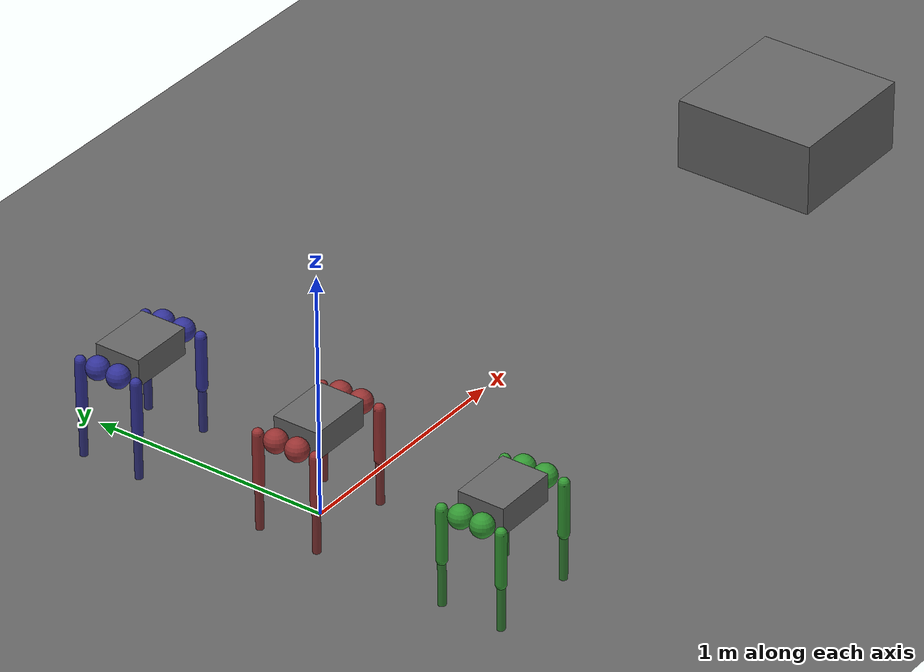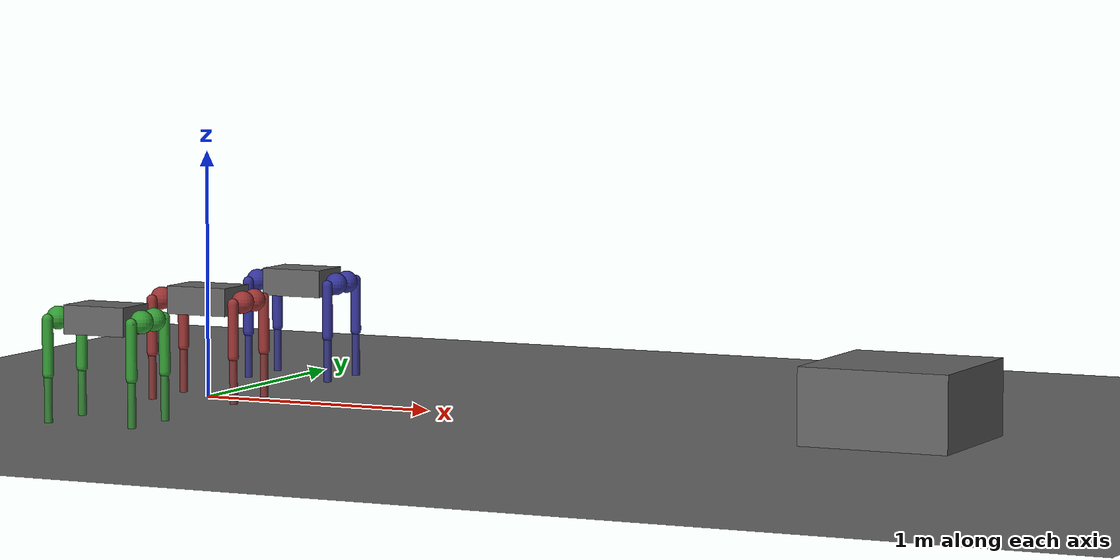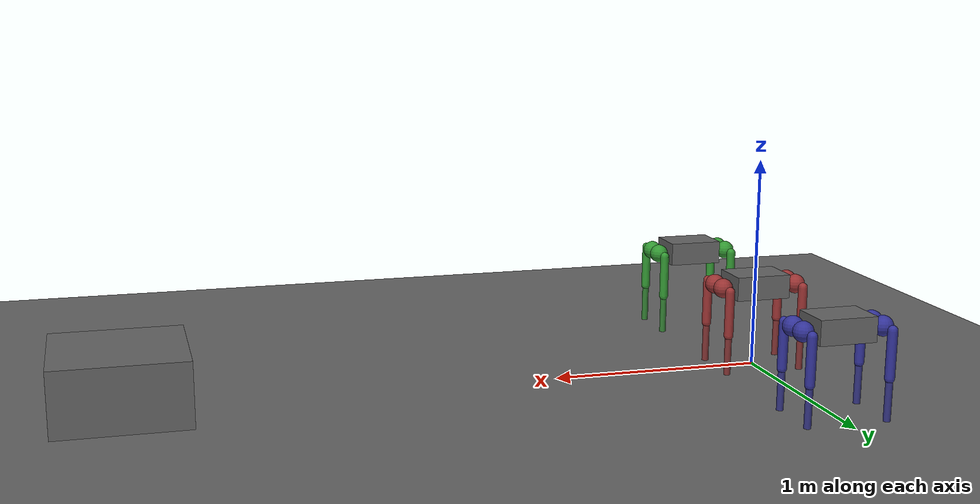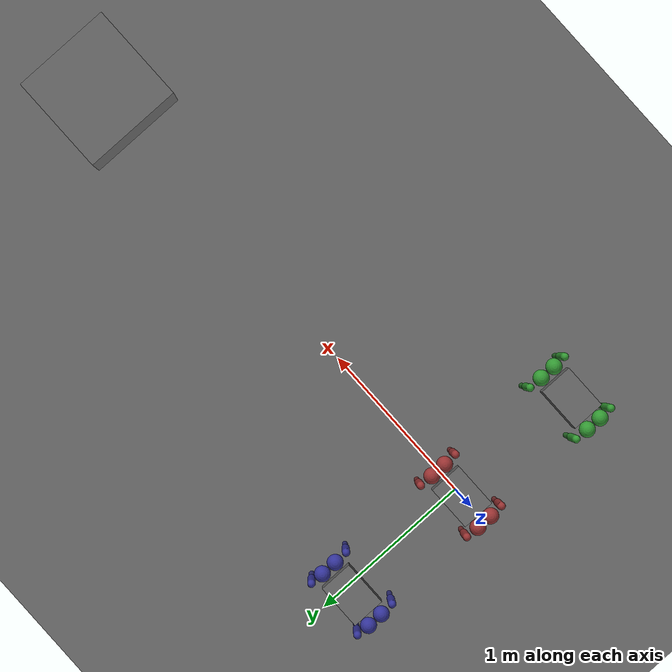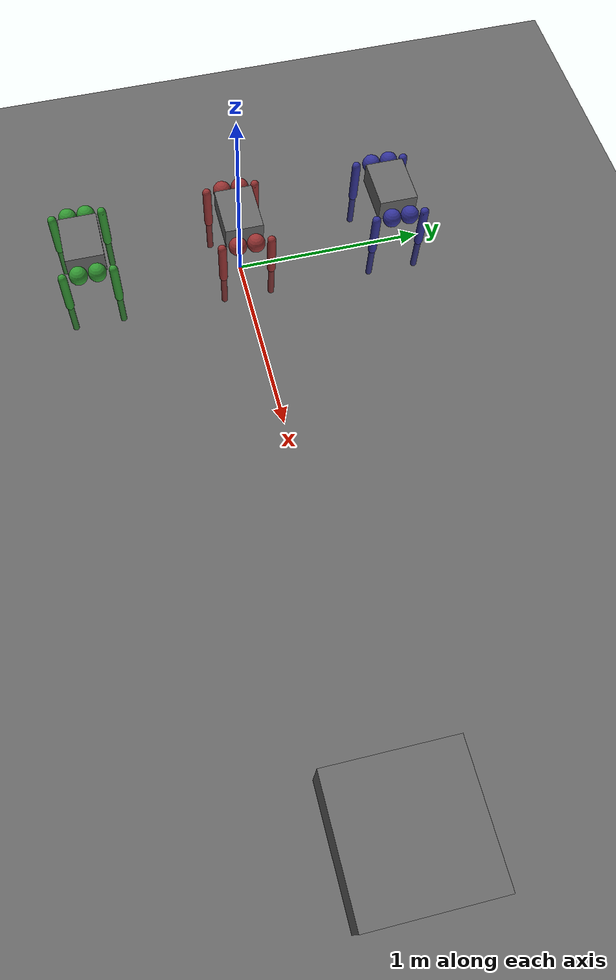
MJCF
<mujoco model="multi_go1_3">
  <compiler angle="radian" autolimits="true"/>
  <option integrator="RK4" timestep="0.002"/>

  <default>
    <joint armature="0.01" damping="2" limited="true"/>
    <geom contype="0" conaffinity="0" condim="1"
          friction="0.6 0.3 0.3" rgba="0.4 0.4 0.4 1"/>
    <motor ctrllimited="true" ctrlrange="-1 1"/>
  </default>

  <asset>
    <texture name="texplane" type="2d" builtin="checker"
             rgb1="0.2 0.3 0.4" rgb2="0.1 0.2 0.3" width="512" height="512"/>
    <material name="MatPlane" reflectance="0.5" texture="texplane"
              texrepeat="1 1" texuniform="true"/>
    <material name="r0_mat" rgba="0.7 0.2 0.2 1"/>
    <material name="r1_mat" rgba="0.2 0.2 0.7 1"/>
    <material name="r2_mat" rgba="0.2 0.7 0.2 1"/>
    <material name="box_mat" rgba="0.9 0.9 0.2 1"/>
  </asset>

  <worldbody>
    <light cutoff="100" diffuse="1 1 1" dir="0 0 -1.3" directional="true"
           exponent="1" pos="0 0 4" specular="0.1 0.1 0.1"/>
    <geom name="floor" type="plane" size="50 50 0.1" contype="1" conaffinity="1"
          condim="3" material="MatPlane" friction="1.0 0.5 0.5"/>

    <!-- ===================== ROBOT 0 (red, y=0) ===================== -->
    <body name="trunk_r0" pos="0 0 0.4">
      <joint name="root_r0" type="free"/>
      <geom name="trunk_geom_r0" type="box" size="0.1335 0.097 0.057"
            contype="1" conaffinity="1" condim="3" material="r0_mat"
            mass="5.204"/>

      <!-- FR: Front Right -->
      <body name="FR_hip_r0" pos="0.1881 -0.04675 0">
        <joint name="FR_hip_joint_r0" axis="1 0 0" range="-0.863 0.863"/>
        <geom name="FR_hip_geom_r0" type="sphere" size="0.046"
              rgba="0.6 0.2 0.2 1"/>
        <body name="FR_thigh_r0" pos="0 -0.08 0">
          <joint name="FR_thigh_joint_r0" axis="0 1 0" range="-0.686 4.501"/>
          <geom name="FR_thigh_geom_r0" type="capsule"
                fromto="0 0 0 0 0 -0.213" size="0.022"
                rgba="0.6 0.2 0.2 1"/>
          <body name="FR_calf_r0" pos="0 0 -0.213">
            <joint name="FR_calf_joint_r0" axis="0 1 0" range="-2.818 -0.888"/>
            <geom name="FR_calf_geom_r0" type="capsule"
                  fromto="0 0 0 0 0 -0.213" size="0.016"
                  contype="1" conaffinity="1" condim="3"
                  rgba="0.5 0.2 0.2 1"/>
            <site name="FR_foot_r0" pos="0 0 -0.213" size="0.022" type="sphere"/>
          </body>
        </body>
      </body>

      <!-- FL: Front Left -->
      <body name="FL_hip_r0" pos="0.1881 0.04675 0">
        <joint name="FL_hip_joint_r0" axis="1 0 0" range="-0.863 0.863"/>
        <geom name="FL_hip_geom_r0" type="sphere" size="0.046"
              rgba="0.6 0.2 0.2 1"/>
        <body name="FL_thigh_r0" pos="0 0.08 0">
          <joint name="FL_thigh_joint_r0" axis="0 1 0" range="-0.686 4.501"/>
          <geom name="FL_thigh_geom_r0" type="capsule"
                fromto="0 0 0 0 0 -0.213" size="0.022"
                rgba="0.6 0.2 0.2 1"/>
          <body name="FL_calf_r0" pos="0 0 -0.213">
            <joint name="FL_calf_joint_r0" axis="0 1 0" range="-2.818 -0.888"/>
            <geom name="FL_calf_geom_r0" type="capsule"
                  fromto="0 0 0 0 0 -0.213" size="0.016"
                  contype="1" conaffinity="1" condim="3"
                  rgba="0.5 0.2 0.2 1"/>
            <site name="FL_foot_r0" pos="0 0 -0.213" size="0.022" type="sphere"/>
          </body>
        </body>
      </body>

      <!-- RR: Rear Right -->
      <body name="RR_hip_r0" pos="-0.1881 -0.04675 0">
        <joint name="RR_hip_joint_r0" axis="1 0 0" range="-0.863 0.863"/>
        <geom name="RR_hip_geom_r0" type="sphere" size="0.046"
              rgba="0.6 0.2 0.2 1"/>
        <body name="RR_thigh_r0" pos="0 -0.08 0">
          <joint name="RR_thigh_joint_r0" axis="0 1 0" range="-0.686 4.501"/>
          <geom name="RR_thigh_geom_r0" type="capsule"
                fromto="0 0 0 0 0 -0.213" size="0.022"
                rgba="0.6 0.2 0.2 1"/>
          <body name="RR_calf_r0" pos="0 0 -0.213">
            <joint name="RR_calf_joint_r0" axis="0 1 0" range="-2.818 -0.888"/>
            <geom name="RR_calf_geom_r0" type="capsule"
                  fromto="0 0 0 0 0 -0.213" size="0.016"
                  contype="1" conaffinity="1" condim="3"
                  rgba="0.5 0.2 0.2 1"/>
            <site name="RR_foot_r0" pos="0 0 -0.213" size="0.022" type="sphere"/>
          </body>
        </body>
      </body>

      <!-- RL: Rear Left -->
      <body name="RL_hip_r0" pos="-0.1881 0.04675 0">
        <joint name="RL_hip_joint_r0" axis="1 0 0" range="-0.863 0.863"/>
        <geom name="RL_hip_geom_r0" type="sphere" size="0.046"
              rgba="0.6 0.2 0.2 1"/>
        <body name="RL_thigh_r0" pos="0 0.08 0">
          <joint name="RL_thigh_joint_r0" axis="0 1 0" range="-0.686 4.501"/>
          <geom name="RL_thigh_geom_r0" type="capsule"
                fromto="0 0 0 0 0 -0.213" size="0.022"
                rgba="0.6 0.2 0.2 1"/>
          <body name="RL_calf_r0" pos="0 0 -0.213">
            <joint name="RL_calf_joint_r0" axis="0 1 0" range="-2.818 -0.888"/>
            <geom name="RL_calf_geom_r0" type="capsule"
                  fromto="0 0 0 0 0 -0.213" size="0.016"
                  contype="1" conaffinity="1" condim="3"
                  rgba="0.5 0.2 0.2 1"/>
            <site name="RL_foot_r0" pos="0 0 -0.213" size="0.022" type="sphere"/>
          </body>
        </body>
      </body>
    </body>

    <!-- ===================== ROBOT 1 (blue, y=0.8) ===================== -->
    <body name="trunk_r1" pos="0 0.8 0.4">
      <joint name="root_r1" type="free"/>
      <geom name="trunk_geom_r1" type="box" size="0.1335 0.097 0.057"
            contype="1" conaffinity="1" condim="3" material="r1_mat"
            mass="5.204"/>

      <!-- FR: Front Right -->
      <body name="FR_hip_r1" pos="0.1881 -0.04675 0">
        <joint name="FR_hip_joint_r1" axis="1 0 0" range="-0.863 0.863"/>
        <geom name="FR_hip_geom_r1" type="sphere" size="0.046"
              rgba="0.2 0.2 0.6 1"/>
        <body name="FR_thigh_r1" pos="0 -0.08 0">
          <joint name="FR_thigh_joint_r1" axis="0 1 0" range="-0.686 4.501"/>
          <geom name="FR_thigh_geom_r1" type="capsule"
                fromto="0 0 0 0 0 -0.213" size="0.022"
                rgba="0.2 0.2 0.6 1"/>
          <body name="FR_calf_r1" pos="0 0 -0.213">
            <joint name="FR_calf_joint_r1" axis="0 1 0" range="-2.818 -0.888"/>
            <geom name="FR_calf_geom_r1" type="capsule"
                  fromto="0 0 0 0 0 -0.213" size="0.016"
                  contype="1" conaffinity="1" condim="3"
                  rgba="0.2 0.2 0.5 1"/>
            <site name="FR_foot_r1" pos="0 0 -0.213" size="0.022" type="sphere"/>
          </body>
        </body>
      </body>

      <!-- FL: Front Left -->
      <body name="FL_hip_r1" pos="0.1881 0.04675 0">
        <joint name="FL_hip_joint_r1" axis="1 0 0" range="-0.863 0.863"/>
        <geom name="FL_hip_geom_r1" type="sphere" size="0.046"
              rgba="0.2 0.2 0.6 1"/>
        <body name="FL_thigh_r1" pos="0 0.08 0">
          <joint name="FL_thigh_joint_r1" axis="0 1 0" range="-0.686 4.501"/>
          <geom name="FL_thigh_geom_r1" type="capsule"
                fromto="0 0 0 0 0 -0.213" size="0.022"
                rgba="0.2 0.2 0.6 1"/>
          <body name="FL_calf_r1" pos="0 0 -0.213">
            <joint name="FL_calf_joint_r1" axis="0 1 0" range="-2.818 -0.888"/>
            <geom name="FL_calf_geom_r1" type="capsule"
                  fromto="0 0 0 0 0 -0.213" size="0.016"
                  contype="1" conaffinity="1" condim="3"
                  rgba="0.2 0.2 0.5 1"/>
            <site name="FL_foot_r1" pos="0 0 -0.213" size="0.022" type="sphere"/>
          </body>
        </body>
      </body>

      <!-- RR: Rear Right -->
      <body name="RR_hip_r1" pos="-0.1881 -0.04675 0">
        <joint name="RR_hip_joint_r1" axis="1 0 0" range="-0.863 0.863"/>
        <geom name="RR_hip_geom_r1" type="sphere" size="0.046"
              rgba="0.2 0.2 0.6 1"/>
        <body name="RR_thigh_r1" pos="0 -0.08 0">
          <joint name="RR_thigh_joint_r1" axis="0 1 0" range="-0.686 4.501"/>
          <geom name="RR_thigh_geom_r1" type="capsule"
                fromto="0 0 0 0 0 -0.213" size="0.022"
                rgba="0.2 0.2 0.6 1"/>
          <body name="RR_calf_r1" pos="0 0 -0.213">
            <joint name="RR_calf_joint_r1" axis="0 1 0" range="-2.818 -0.888"/>
            <geom name="RR_calf_geom_r1" type="capsule"
                  fromto="0 0 0 0 0 -0.213" size="0.016"
                  contype="1" conaffinity="1" condim="3"
                  rgba="0.2 0.2 0.5 1"/>
            <site name="RR_foot_r1" pos="0 0 -0.213" size="0.022" type="sphere"/>
          </body>
        </body>
      </body>

      <!-- RL: Rear Left -->
      <body name="RL_hip_r1" pos="-0.1881 0.04675 0">
        <joint name="RL_hip_joint_r1" axis="1 0 0" range="-0.863 0.863"/>
        <geom name="RL_hip_geom_r1" type="sphere" size="0.046"
              rgba="0.2 0.2 0.6 1"/>
        <body name="RL_thigh_r1" pos="0 0.08 0">
          <joint name="RL_thigh_joint_r1" axis="0 1 0" range="-0.686 4.501"/>
          <geom name="RL_thigh_geom_r1" type="capsule"
                fromto="0 0 0 0 0 -0.213" size="0.022"
                rgba="0.2 0.2 0.6 1"/>
          <body name="RL_calf_r1" pos="0 0 -0.213">
            <joint name="RL_calf_joint_r1" axis="0 1 0" range="-2.818 -0.888"/>
            <geom name="RL_calf_geom_r1" type="capsule"
                  fromto="0 0 0 0 0 -0.213" size="0.016"
                  contype="1" conaffinity="1" condim="3"
                  rgba="0.2 0.2 0.5 1"/>
            <site name="RL_foot_r1" pos="0 0 -0.213" size="0.022" type="sphere"/>
          </body>
        </body>
      </body>
    </body>

    <!-- ===================== ROBOT 2 (green, y=-0.8) ===================== -->
    <body name="trunk_r2" pos="0 -0.8 0.4">
      <joint name="root_r2" type="free"/>
      <geom name="trunk_geom_r2" type="box" size="0.1335 0.097 0.057"
            contype="1" conaffinity="1" condim="3" material="r2_mat"
            mass="5.204"/>

      <!-- FR: Front Right -->
      <body name="FR_hip_r2" pos="0.1881 -0.04675 0">
        <joint name="FR_hip_joint_r2" axis="1 0 0" range="-0.863 0.863"/>
        <geom name="FR_hip_geom_r2" type="sphere" size="0.046"
              rgba="0.2 0.6 0.2 1"/>
        <body name="FR_thigh_r2" pos="0 -0.08 0">
          <joint name="FR_thigh_joint_r2" axis="0 1 0" range="-0.686 4.501"/>
          <geom name="FR_thigh_geom_r2" type="capsule"
                fromto="0 0 0 0 0 -0.213" size="0.022"
                rgba="0.2 0.6 0.2 1"/>
          <body name="FR_calf_r2" pos="0 0 -0.213">
            <joint name="FR_calf_joint_r2" axis="0 1 0" range="-2.818 -0.888"/>
            <geom name="FR_calf_geom_r2" type="capsule"
                  fromto="0 0 0 0 0 -0.213" size="0.016"
                  contype="1" conaffinity="1" condim="3"
                  rgba="0.2 0.5 0.2 1"/>
            <site name="FR_foot_r2" pos="0 0 -0.213" size="0.022" type="sphere"/>
          </body>
        </body>
      </body>

      <!-- FL: Front Left -->
      <body name="FL_hip_r2" pos="0.1881 0.04675 0">
        <joint name="FL_hip_joint_r2" axis="1 0 0" range="-0.863 0.863"/>
        <geom name="FL_hip_geom_r2" type="sphere" size="0.046"
              rgba="0.2 0.6 0.2 1"/>
        <body name="FL_thigh_r2" pos="0 0.08 0">
          <joint name="FL_thigh_joint_r2" axis="0 1 0" range="-0.686 4.501"/>
          <geom name="FL_thigh_geom_r2" type="capsule"
                fromto="0 0 0 0 0 -0.213" size="0.022"
                rgba="0.2 0.6 0.2 1"/>
          <body name="FL_calf_r2" pos="0 0 -0.213">
            <joint name="FL_calf_joint_r2" axis="0 1 0" range="-2.818 -0.888"/>
            <geom name="FL_calf_geom_r2" type="capsule"
                  fromto="0 0 0 0 0 -0.213" size="0.016"
                  contype="1" conaffinity="1" condim="3"
                  rgba="0.2 0.5 0.2 1"/>
            <site name="FL_foot_r2" pos="0 0 -0.213" size="0.022" type="sphere"/>
          </body>
        </body>
      </body>

      <!-- RR: Rear Right -->
      <body name="RR_hip_r2" pos="-0.1881 -0.04675 0">
        <joint name="RR_hip_joint_r2" axis="1 0 0" range="-0.863 0.863"/>
        <geom name="RR_hip_geom_r2" type="sphere" size="0.046"
              rgba="0.2 0.6 0.2 1"/>
        <body name="RR_thigh_r2" pos="0 -0.08 0">
          <joint name="RR_thigh_joint_r2" axis="0 1 0" range="-0.686 4.501"/>
          <geom name="RR_thigh_geom_r2" type="capsule"
                fromto="0 0 0 0 0 -0.213" size="0.022"
                rgba="0.2 0.6 0.2 1"/>
          <body name="RR_calf_r2" pos="0 0 -0.213">
            <joint name="RR_calf_joint_r2" axis="0 1 0" range="-2.818 -0.888"/>
            <geom name="RR_calf_geom_r2" type="capsule"
                  fromto="0 0 0 0 0 -0.213" size="0.016"
                  contype="1" conaffinity="1" condim="3"
                  rgba="0.2 0.5 0.2 1"/>
            <site name="RR_foot_r2" pos="0 0 -0.213" size="0.022" type="sphere"/>
          </body>
        </body>
      </body>

      <!-- RL: Rear Left -->
      <body name="RL_hip_r2" pos="-0.1881 0.04675 0">
        <joint name="RL_hip_joint_r2" axis="1 0 0" range="-0.863 0.863"/>
        <geom name="RL_hip_geom_r2" type="sphere" size="0.046"
              rgba="0.2 0.6 0.2 1"/>
        <body name="RL_thigh_r2" pos="0 0.08 0">
          <joint name="RL_thigh_joint_r2" axis="0 1 0" range="-0.686 4.501"/>
          <geom name="RL_thigh_geom_r2" type="capsule"
                fromto="0 0 0 0 0 -0.213" size="0.022"
                rgba="0.2 0.6 0.2 1"/>
          <body name="RL_calf_r2" pos="0 0 -0.213">
            <joint name="RL_calf_joint_r2" axis="0 1 0" range="-2.818 -0.888"/>
            <geom name="RL_calf_geom_r2" type="capsule"
                  fromto="0 0 0 0 0 -0.213" size="0.016"
                  contype="1" conaffinity="1" condim="3"
                  rgba="0.2 0.5 0.2 1"/>
            <site name="RL_foot_r2" pos="0 0 -0.213" size="0.022" type="sphere"/>
          </body>
        </body>
      </body>
    </body>

    <!-- ===================== PUSH BOX (coop_push task) ===================== -->
    <body name="push_box" pos="3.0 0.0 0.15">
      <joint name="box_joint" type="free"/>
      <geom name="box_geom" type="box" size="0.3 0.3 0.15" mass="5.0"
            material="box_mat" contype="1" conaffinity="1" condim="3"
            friction="1.0 0.5 0.5"/>
    </body>
  </worldbody>

  <actuator>
    <!-- Robot 0: 12 torque motors (FR, FL, RR, RL × hip/thigh/calf) -->
    <motor name="m_FR_hip_r0"   joint="FR_hip_joint_r0"   gear="33.5"/>
    <motor name="m_FR_thigh_r0" joint="FR_thigh_joint_r0" gear="33.5"/>
    <motor name="m_FR_calf_r0"  joint="FR_calf_joint_r0"  gear="33.5"/>
    <motor name="m_FL_hip_r0"   joint="FL_hip_joint_r0"   gear="33.5"/>
    <motor name="m_FL_thigh_r0" joint="FL_thigh_joint_r0" gear="33.5"/>
    <motor name="m_FL_calf_r0"  joint="FL_calf_joint_r0"  gear="33.5"/>
    <motor name="m_RR_hip_r0"   joint="RR_hip_joint_r0"   gear="33.5"/>
    <motor name="m_RR_thigh_r0" joint="RR_thigh_joint_r0" gear="33.5"/>
    <motor name="m_RR_calf_r0"  joint="RR_calf_joint_r0"  gear="33.5"/>
    <motor name="m_RL_hip_r0"   joint="RL_hip_joint_r0"   gear="33.5"/>
    <motor name="m_RL_thigh_r0" joint="RL_thigh_joint_r0" gear="33.5"/>
    <motor name="m_RL_calf_r0"  joint="RL_calf_joint_r0"  gear="33.5"/>
    <!-- Robot 1: 12 torque motors -->
    <motor name="m_FR_hip_r1"   joint="FR_hip_joint_r1"   gear="33.5"/>
    <motor name="m_FR_thigh_r1" joint="FR_thigh_joint_r1" gear="33.5"/>
    <motor name="m_FR_calf_r1"  joint="FR_calf_joint_r1"  gear="33.5"/>
    <motor name="m_FL_hip_r1"   joint="FL_hip_joint_r1"   gear="33.5"/>
    <motor name="m_FL_thigh_r1" joint="FL_thigh_joint_r1" gear="33.5"/>
    <motor name="m_FL_calf_r1"  joint="FL_calf_joint_r1"  gear="33.5"/>
    <motor name="m_RR_hip_r1"   joint="RR_hip_joint_r1"   gear="33.5"/>
    <motor name="m_RR_thigh_r1" joint="RR_thigh_joint_r1" gear="33.5"/>
    <motor name="m_RR_calf_r1"  joint="RR_calf_joint_r1"  gear="33.5"/>
    <motor name="m_RL_hip_r1"   joint="RL_hip_joint_r1"   gear="33.5"/>
    <motor name="m_RL_thigh_r1" joint="RL_thigh_joint_r1" gear="33.5"/>
    <motor name="m_RL_calf_r1"  joint="RL_calf_joint_r1"  gear="33.5"/>
    <!-- Robot 2: 12 torque motors -->
    <motor name="m_FR_hip_r2"   joint="FR_hip_joint_r2"   gear="33.5"/>
    <motor name="m_FR_thigh_r2" joint="FR_thigh_joint_r2" gear="33.5"/>
    <motor name="m_FR_calf_r2"  joint="FR_calf_joint_r2"  gear="33.5"/>
    <motor name="m_FL_hip_r2"   joint="FL_hip_joint_r2"   gear="33.5"/>
    <motor name="m_FL_thigh_r2" joint="FL_thigh_joint_r2" gear="33.5"/>
    <motor name="m_FL_calf_r2"  joint="FL_calf_joint_r2"  gear="33.5"/>
    <motor name="m_RR_hip_r2"   joint="RR_hip_joint_r2"   gear="33.5"/>
    <motor name="m_RR_thigh_r2" joint="RR_thigh_joint_r2" gear="33.5"/>
    <motor name="m_RR_calf_r2"  joint="RR_calf_joint_r2"  gear="33.5"/>
    <motor name="m_RL_hip_r2"   joint="RL_hip_joint_r2"   gear="33.5"/>
    <motor name="m_RL_thigh_r2" joint="RL_thigh_joint_r2" gear="33.5"/>
    <motor name="m_RL_calf_r2"  joint="RL_calf_joint_r2"  gear="33.5"/>
  </actuator>

  <sensor>
    <!-- Touch sensors at each foot (4 per robot = 12 total) -->
    <touch name="touch_FR_r0" site="FR_foot_r0"/>
    <touch name="touch_FL_r0" site="FL_foot_r0"/>
    <touch name="touch_RR_r0" site="RR_foot_r0"/>
    <touch name="touch_RL_r0" site="RL_foot_r0"/>
    <touch name="touch_FR_r1" site="FR_foot_r1"/>
    <touch name="touch_FL_r1" site="FL_foot_r1"/>
    <touch name="touch_RR_r1" site="RR_foot_r1"/>
    <touch name="touch_RL_r1" site="RL_foot_r1"/>
    <touch name="touch_FR_r2" site="FR_foot_r2"/>
    <touch name="touch_FL_r2" site="FL_foot_r2"/>
    <touch name="touch_RR_r2" site="RR_foot_r2"/>
    <touch name="touch_RL_r2" site="RL_foot_r2"/>
  </sensor>

  <!-- Default standing pose keyframe (hip=0, thigh=0.8, calf=-1.5 rad) -->
  <keyframe>
    <key name="standing"
         qpos="0 0 0.4 1 0 0 0   0 0.8 -1.5  0 0.8 -1.5  0 1.0 -1.5  0 1.0 -1.5
               0 0.8 0.4 1 0 0 0   0 0.8 -1.5  0 0.8 -1.5  0 1.0 -1.5  0 1.0 -1.5
               0 -0.8 0.4 1 0 0 0   0 0.8 -1.5  0 0.8 -1.5  0 1.0 -1.5  0 1.0 -1.5
               3.0 0.0 0.15 1 0 0 0"/>
  </keyframe>
</mujoco>
